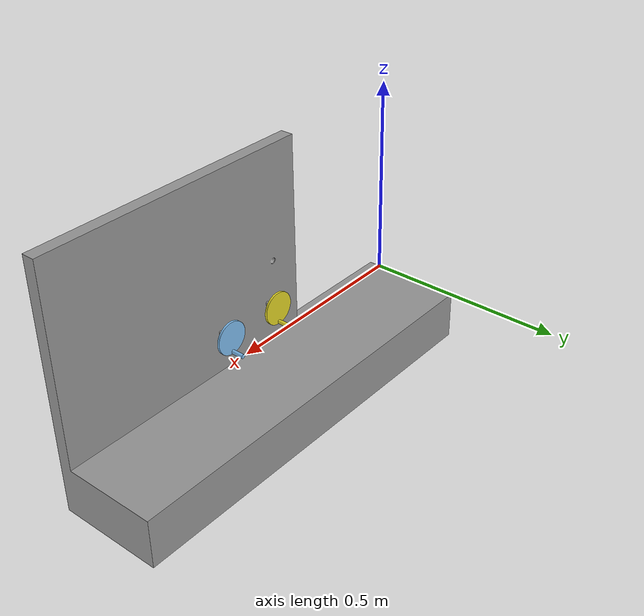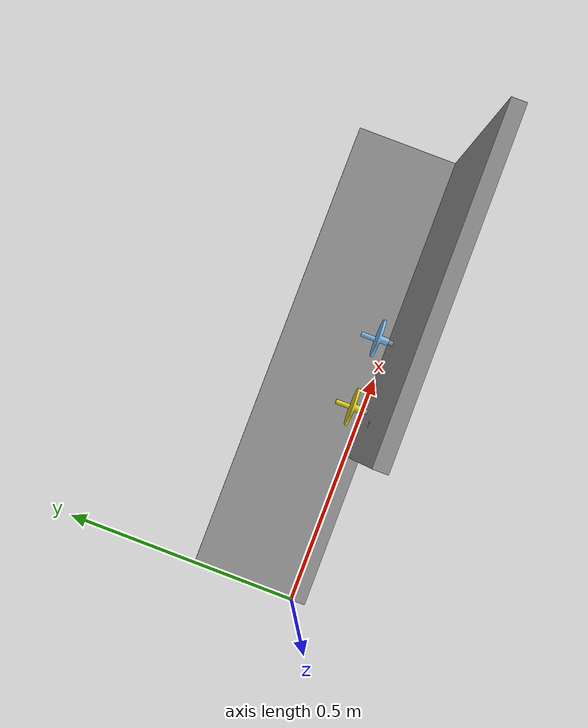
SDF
<?xml version="1.0"?>
<sdf version="1.7">
  <model name="eva_panel">

    <link name="station">
      <pose>0.0 0.0 0.0 0.0 0.0 0.0</pose>
      <inertial>
        <mass>100.0</mass>
        <pose>0.0 0.0 0.0 0.0 0.0 0.0</pose>
        <inertia>
          <ixx>1.0</ixx>
          <ixy>0.0</ixy>
          <ixz>0.0</ixz>
          <iyy>1.0</iyy>
          <iyz>0.0</iyz>
          <izz>1.0</izz>
        </inertia>
      </inertial>
      <visual name="station_visual">
        <geometry>
          <mesh>
            <uri>model://eva_panel/meshes/eva_station.stl</uri>
            <scale>0.001 0.001 0.001</scale>
          </mesh>
        </geometry>
        <material>
          <script>
            <uri>file://media/materials/scripts/gazebo.material</uri>
            <name>PR2/Grey0</name>
          </script>
        </material>
      </visual>
      <collision name="station_collision">
        <geometry>
          <mesh>
            <uri>model://eva_panel/meshes/eva_station.stl</uri>
            <scale>0.001 0.001 0.001</scale>
          </mesh>
        </geometry>
      </collision>
    </link>

    <link name="yaw_handle">
      <pose>0.425 0.030 0.100 0.0 0.0 0.0</pose>
      <inertial>
        <mass>0.080</mass>
        <pose>0.0 0.0 0.0 0.0 0.0 0.0</pose>
        <inertia>
          <ixx>0.001</ixx>
          <ixy>0.0</ixy>
          <ixz>0.0</ixz>
          <iyy>0.001</iyy>
          <iyz>0.0</iyz>
          <izz>0.001</izz>
        </inertia>
      </inertial>
      <visual name="yaw_dial_visual">
        <geometry>
          <mesh>
            <uri>model://eva_panel/meshes/dial_handle.stl</uri>
            <scale>0.001 0.001 0.001</scale>
          </mesh>
        </geometry>
        <material>
          <script>
            <uri>file://media/materials/scripts/gazebo.material</uri>
            <name>Gazebo/Yellow</name>
          </script>
        </material>
      </visual>
      <collision name="yaw_dial_collision">
        <geometry>
          <mesh>
            <uri>model://eva_panel/meshes/dial_handle.stl</uri>
            <scale>0.001 0.001 0.001</scale>
          </mesh>
        </geometry>
      </collision>
    </link>

    <link name="pitch_handle">
      <pose>0.575 0.030 0.100 0.0 0.0 0.0</pose>
      <inertial>
        <mass>0.080</mass>
        <pose>0.0 0.0 0.0 0.0 0.0 0.0</pose>
        <inertia>
          <ixx>0.001</ixx>
          <ixy>0.0</ixy>
          <ixz>0.0</ixz>
          <iyy>0.001</iyy>
          <iyz>0.0</iyz>
          <izz>0.001</izz>
        </inertia>
      </inertial>
      <visual name="pitch_dial_visual">
        <geometry>
          <mesh>
            <uri>model://eva_panel/meshes/dial_handle.stl</uri>
            <scale>0.001 0.001 0.001</scale>
          </mesh>
        </geometry>
        <material>
          <script>
            <uri>file://media/materials/scripts/gazebo.material</uri>
            <name>Gazebo/SkyBlue</name>
          </script>
        </material>
      </visual>
      <collision name="pitch_dial_collision">
        <geometry>
          <mesh>
            <uri>model://eva_panel/meshes/dial_handle.stl</uri>
            <scale>0.001 0.001 0.001</scale>
          </mesh>
        </geometry>
      </collision>
    </link>

    <joint name="fixed" type="fixed">
      <parent>world</parent>
      <child>station</child>
    </joint>

    <joint name="yaw_dial" type="revolute">
      <parent>station</parent>
      <child>yaw_handle</child>
      <pose>0.0 0.0 0.0 0.0 0.0 0.0</pose>
      <axis>
      	<xyz>0.0 1.0 0.0</xyz>
      </axis>
    </joint>

    <joint name="pitch_dial" type="revolute">
      <parent>station</parent>
      <child>pitch_handle</child>
      <pose>0.0 0.0 0.0 0.0 0.0 0.0</pose>
      <axis>
      	<xyz>0.0 1.0 0.0</xyz>
      </axis>
    </joint>

  </model>
</sdf>
